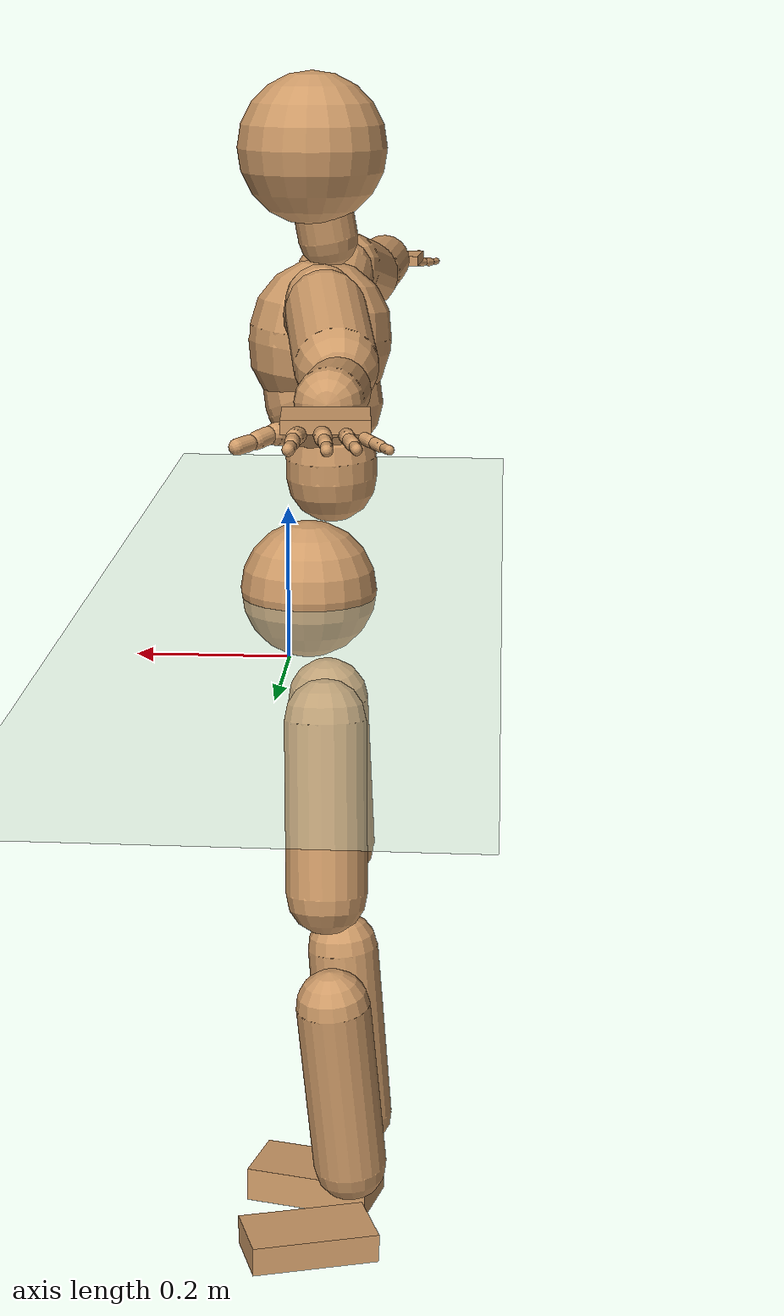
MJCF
<mujoco model="humanoid">
  <compiler coordinate="local" angle="radian"/>
  <default>
    <joint damping="0.0" armature="0.01" stiffness="0.0" limited="true"/>
    <geom conaffinity="1" condim="3" contype="7" margin="0.001" rgba="0.8 0.6 .4 1"/>
  </default>
  <asset>
    <texture type="skybox" builtin="gradient" rgb1=".4 .5 .6" rgb2="0 0 0" width="100" height="100"/>
    <texture builtin="flat" height="1278" mark="cross" markrgb="1 1 1" name="texgeom" random="0.01" rgb1="0.8 0.6 0.4" rgb2="0.8 0.6 0.4" type="cube" width="127"/>
    <texture builtin="checker" height="100" name="texplane" rgb1="0 0 0" rgb2="0.8 0.8 0.8" type="2d" width="100"/>
    <material name="MatPlane" reflectance="0.5" shininess="1" specular="1" texrepeat="60 60" texture="texplane"/>
    <material name="geom" texture="texgeom" texuniform="true"/>
  </asset>
  <worldbody>
    <light cutoff="100" diffuse="1 1 1" dir="-0 0 -1.3" directional="true" exponent="1" pos="0 0 1.3" specular=".1 .1 .1"/>
    <geom conaffinity="1" condim="3" name="floor" pos="0 0 0" rgba="0.8 0.9 0.8 1" size="100 100 .2" type="plane" material="MatPlane"/>
    <body name="Pelvis" pos="0.001 -0.3471 0.0077">
      <freejoint name="Pelvis"/>
      <geom type="sphere" contype="1" conaffinity="1" density="500" size="0.0987" pos="0.0000 0.0000 0.0000" name="Pelvis"/>
      <body name="L_Hip" pos="-0.0273 0.0548 -0.0931">
        <joint name="L_Hip_x" type="hinge" pos="0 0 0" axis="1 0 0" stiffness="800" damping="80" armature="0.02" range="-180.0000 180.0000"/>
        <joint name="L_Hip_y" type="hinge" pos="0 0 0" axis="0 1 0" stiffness="800" damping="80" armature="0.02" range="-180.0000 180.0000"/>
        <joint name="L_Hip_z" type="hinge" pos="0 0 0" axis="0 0 1" stiffness="800" damping="80" armature="0.02" range="-180.0000 180.0000"/>
        <geom type="capsule" contype="1" conaffinity="1" density="500" fromto="-0.0019 0.0137 -0.0839 -0.0078 0.0546 -0.3356" size="0.0597" name="L_Hip"/>
        <body name="L_Knee" pos="-0.0097 0.0683 -0.4195">
          <joint name="L_Knee_x" type="hinge" pos="0 0 0" axis="1 0 0" stiffness="800" damping="80" armature="0.02" range="-180.0000 180.0000"/>
          <joint name="L_Knee_y" type="hinge" pos="0 0 0" axis="0 1 0" stiffness="800" damping="80" armature="0.02" range="-180.0000 180.0000"/>
          <joint name="L_Knee_z" type="hinge" pos="0 0 0" axis="0 0 1" stiffness="800" damping="80" armature="0.02" range="-180.0000 180.0000"/>
          <geom type="capsule" contype="1" conaffinity="1" density="500" fromto="-0.0084 -0.0091 -0.0897 -0.0334 -0.0365 -0.3587" size="0.0548" name="L_Knee"/>
          <body name="L_Ankle" pos="-0.0418 -0.0456 -0.4484">
            <joint name="L_Ankle_x" type="hinge" pos="0 0 0" axis="1 0 0" stiffness="800" damping="80" armature="0.02" range="-180.0000 180.0000"/>
            <joint name="L_Ankle_y" type="hinge" pos="0 0 0" axis="0 1 0" stiffness="800" damping="80" armature="0.02" range="-180.0000 180.0000"/>
            <joint name="L_Ankle_z" type="hinge" pos="0 0 0" axis="0 0 1" stiffness="800" damping="80" armature="0.02" range="-180.0000 180.0000"/>
            <geom type="box" contype="1" conaffinity="1" density="500" pos="0.0704 0.0223 -0.0325" size="0.0974 0.0532 0.0222" quat="0.9883 0.0000 0.0000 0.1527" name="L_Ankle"/>
            <body name="L_Toe" pos="0.1407 0.0446 -0.0651">
              <joint name="L_Toe_x" type="hinge" pos="0 0 0" axis="1 0 0" stiffness="500" damping="50" armature="0.02" range="-180.0000 180.0000"/>
              <joint name="L_Toe_y" type="hinge" pos="0 0 0" axis="0 1 0" stiffness="500" damping="50" armature="0.02" range="-180.0000 180.0000"/>
              <joint name="L_Toe_z" type="hinge" pos="0 0 0" axis="0 0 1" stiffness="500" damping="50" armature="0.02" range="-180.0000 180.0000"/>
              <geom type="box" contype="1" conaffinity="1" density="500" pos="0.0000 0.0000 0.0320" size="0.0011 0.0025 0.0011" quat="0.9876 0.0000 0.0000 0.1570" name="L_Toe"/>
            </body>
          </body>
        </body>
      </body>
      <body name="R_Hip" pos="-0.0205 -0.0565 -0.1031">
        <joint name="R_Hip_x" type="hinge" pos="0 0 0" axis="1 0 0" stiffness="800" damping="80" armature="0.02" range="-180.0000 180.0000"/>
        <joint name="R_Hip_y" type="hinge" pos="0 0 0" axis="0 1 0" stiffness="800" damping="80" armature="0.02" range="-180.0000 180.0000"/>
        <joint name="R_Hip_z" type="hinge" pos="0 0 0" axis="0 0 1" stiffness="800" damping="80" armature="0.02" range="-180.0000 180.0000"/>
        <geom type="capsule" contype="1" conaffinity="1" density="500" fromto="-0.0035 -0.0103 -0.0804 -0.0139 -0.0412 -0.3218" size="0.0594" name="R_Hip"/>
        <body name="R_Knee" pos="-0.0174 -0.0515 -0.4022">
          <joint name="R_Knee_x" type="hinge" pos="0 0 0" axis="1 0 0" stiffness="800" damping="80" armature="0.02" range="-180.0000 180.0000"/>
          <joint name="R_Knee_y" type="hinge" pos="0 0 0" axis="0 1 0" stiffness="800" damping="80" armature="0.02" range="-180.0000 180.0000"/>
          <joint name="R_Knee_z" type="hinge" pos="0 0 0" axis="0 0 1" stiffness="800" damping="80" armature="0.02" range="-180.0000 180.0000"/>
          <geom type="capsule" contype="1" conaffinity="1" density="500" fromto="-0.0081 0.0035 -0.0926 -0.0324 0.0141 -0.3705" size="0.0544" name="R_Knee"/>
          <body name="R_Ankle" pos="-0.0405 0.0176 -0.4631">
            <joint name="R_Ankle_x" type="hinge" pos="0 0 0" axis="1 0 0" stiffness="800" damping="80" armature="0.02" range="-180.0000 180.0000"/>
            <joint name="R_Ankle_y" type="hinge" pos="0 0 0" axis="0 1 0" stiffness="800" damping="80" armature="0.02" range="-180.0000 180.0000"/>
            <joint name="R_Ankle_z" type="hinge" pos="0 0 0" axis="0 0 1" stiffness="800" damping="80" armature="0.02" range="-180.0000 180.0000"/>
            <geom type="box" contype="1" conaffinity="1" density="500" pos="0.0737 -0.0180 -0.0319" size="0.0974 0.0532 0.0268" quat="0.9929 0.0000 0.0000 -0.1191" name="R_Ankle"/>
            <body name="R_Toe" pos="0.1475 -0.0359 -0.0639">
              <joint name="R_Toe_x" type="hinge" pos="0 0 0" axis="1 0 0" stiffness="500" damping="50" armature="0.02" range="-180.0000 180.0000"/>
              <joint name="R_Toe_y" type="hinge" pos="0 0 0" axis="0 1 0" stiffness="500" damping="50" armature="0.02" range="-180.0000 180.0000"/>
              <joint name="R_Toe_z" type="hinge" pos="0 0 0" axis="0 0 1" stiffness="500" damping="50" armature="0.02" range="-180.0000 180.0000"/>
              <geom type="box" contype="1" conaffinity="1" density="500" pos="0.0000 0.0000 0.0268" size="0.001 0.0025 0.0011" quat="0.9938 0.0000 0.0000 -0.1113" name="R_Toe"/>
            </body>
          </body>
        </body>
      </body>
      <body name="Torso" pos="-0.035 -0.0014 0.1083">
        <joint name="Torso_x" type="hinge" pos="0 0 0" axis="1 0 0" stiffness="1000" damping="100" armature="0.02" range="-180.0000 180.0000"/>
        <joint name="Torso_y" type="hinge" pos="0 0 0" axis="0 1 0" stiffness="1000" damping="100" armature="0.02" range="-180.0000 180.0000"/>
        <joint name="Torso_z" type="hinge" pos="0 0 0" axis="0 0 1" stiffness="1000" damping="100" armature="0.02" range="-180.0000 180.0000"/>
        <geom type="capsule" contype="1" conaffinity="1" density="500" fromto="0.0029 0.0047 0.0871 0.0020 0.0031 0.0580" size="0.065" name="Torso"/>
        <body name="Spine" pos="0.0049 0.0078 0.1451">
          <joint name="Spine_x" type="hinge" pos="0 0 0" axis="1 0 0" stiffness="1000" damping="100" armature="0.02" range="-180.0000 180.0000"/>
          <joint name="Spine_y" type="hinge" pos="0 0 0" axis="0 1 0" stiffness="1000" damping="100" armature="0.02" range="-180.0000 180.0000"/>
          <joint name="Spine_z" type="hinge" pos="0 0 0" axis="0 0 1" stiffness="1000" damping="100" armature="0.02" range="-180.0000 180.0000"/>
          <geom type="capsule" contype="1" conaffinity="1" density="500" fromto="0.0121 -0.0046 0.0339 0.0080 -0.0031 0.0226" size="0.0831" name="Spine"/>
          <body name="Chest" pos="0.0201 -0.0076 0.0565">
            <joint name="Chest_x" type="hinge" pos="0 0 0" axis="1 0 0" stiffness="1000" damping="100" armature="0.02" range="-180.0000 180.0000"/>
            <joint name="Chest_y" type="hinge" pos="0 0 0" axis="0 1 0" stiffness="1000" damping="100" armature="0.02" range="-180.0000 180.0000"/>
            <joint name="Chest_z" type="hinge" pos="0 0 0" axis="0 0 1" stiffness="1000" damping="100" armature="0.02" range="-180.0000 180.0000"/>
            <geom type="capsule" contype="1" conaffinity="1" density="500" fromto="-0.0064 -0.0017 0.0621 -0.0043 -0.0011 0.0414" size="0.1004" name="Chest"/>
            <body name="Neck" pos="-0.0212 -0.0077 0.1604">
              <joint name="Neck_x" type="hinge" pos="0 0 0" axis="1 0 0" stiffness="500" damping="50" armature="0.02" range="-180.0000 180.0000"/>
              <joint name="Neck_y" type="hinge" pos="0 0 0" axis="0 1 0" stiffness="500" damping="50" armature="0.02" range="-180.0000 180.0000"/>
              <joint name="Neck_z" type="hinge" pos="0 0 0" axis="0 0 1" stiffness="500" damping="50" armature="0.02" range="-180.0000 180.0000"/>
              <geom type="capsule" contype="1" conaffinity="1" density="500" fromto="0.0053 0.0044 0.0309 0.0213 0.0175 0.1234" size="0.0418" name="Neck"/>
              <body name="Head" pos="0.0266 0.0218 0.1543">
                <joint name="Head_x" type="hinge" pos="0 0 0" axis="1 0 0" stiffness="500" damping="50" armature="0.02" range="-180.0000 180.0000"/>
                <joint name="Head_y" type="hinge" pos="0 0 0" axis="0 1 0" stiffness="500" damping="50" armature="0.02" range="-180.0000 180.0000"/>
                <joint name="Head_z" type="hinge" pos="0 0 0" axis="0 0 1" stiffness="500" damping="50" armature="0.02" range="-180.0000 180.0000"/>
                <geom type="sphere" contype="1" conaffinity="1" density="500" size="0.1038" pos="0.0000 0.0000 0.0000" name="Head"/>
              </body>
            </body>
            <body name="L_Thorax" pos="-0.0034 0.0409 0.0748">
              <joint name="L_Thorax_x" type="hinge" pos="0 0 0" axis="1 0 0" stiffness="500" damping="50" armature="0.02" range="-180.0000 180.0000"/>
              <joint name="L_Thorax_y" type="hinge" pos="0 0 0" axis="0 1 0" stiffness="500" damping="50" armature="0.02" range="-180.0000 180.0000"/>
              <joint name="L_Thorax_z" type="hinge" pos="0 0 0" axis="0 0 1" stiffness="500" damping="50" armature="0.02" range="-180.0000 180.0000"/>
              <geom type="capsule" contype="1" conaffinity="1" density="500" fromto="-0.0035 0.0270 0.0125 -0.0141 0.1080 0.0498" size="0.0478" name="L_Thorax"/>
              <body name="L_Shoulder" pos="-0.0176 0.1349 0.0623">
                <joint name="L_Shoulder_x" type="hinge" pos="0 0 0" axis="1 0 0" stiffness="500" damping="50" armature="0.02" range="-180.0000 180.0000"/>
                <joint name="L_Shoulder_y" type="hinge" pos="0 0 0" axis="0 1 0" stiffness="500" damping="50" armature="0.02" range="-180.0000 180.0000"/>
                <joint name="L_Shoulder_z" type="hinge" pos="0 0 0" axis="0 0 1" stiffness="500" damping="50" armature="0.02" range="-180.0000 180.0000"/>
                <geom type="capsule" contype="1" conaffinity="1" density="500" fromto="-0.0084 0.0542 -0.0161 -0.0335 0.2170 -0.0646" size="0.0536" name="L_Shoulder"/>
                <body name="L_Elbow" pos="-0.0419 0.2712 -0.0807">
                  <joint name="L_Elbow_x" type="hinge" pos="0 0 0" axis="1 0 0" stiffness="500" damping="50" armature="0.02" range="-720.0000 720.0000"/>
                  <joint name="L_Elbow_y" type="hinge" pos="0 0 0" axis="0 1 0" stiffness="500" damping="50" armature="0.02" range="-720.0000 720.0000"/>
                  <joint name="L_Elbow_z" type="hinge" pos="0 0 0" axis="0 0 1" stiffness="500" damping="50" armature="0.02" range="-720.0000 720.0000"/>
                  <geom type="capsule" contype="1" conaffinity="1" density="500" fromto="-0.0007 0.0593 0.0051 -0.0027 0.2371 0.0204" size="0.0405" name="L_Elbow"/>
                  <body name="L_Wrist" pos="-0.0033 0.2964 0.0256">
                    <joint name="L_Wrist_x" type="hinge" pos="0 0 0" axis="1 0 0" stiffness="300" damping="30" armature="0.02" range="-180.0000 180.0000"/>
                    <joint name="L_Wrist_y" type="hinge" pos="0 0 0" axis="0 1 0" stiffness="300" damping="30" armature="0.02" range="-180.0000 180.0000"/>
                    <joint name="L_Wrist_z" type="hinge" pos="0 0 0" axis="0 0 1" stiffness="300" damping="30" armature="0.02" range="-180.0000 180.0000"/>
                    <geom type="box" contype="1" conaffinity="1" density="500" pos="-0.0032 0.0495 -0.0066" size="0.0426 0.049 0.0079" quat="0.7294 0.0000 0.0000 -0.6841" name="L_Wrist"/>
                    <body name="L_Index1" pos="0.0206 0.1152 -0.0103">
                      <joint name="L_Index1_x" type="hinge" pos="0 0 0" axis="1 0 0" stiffness="100" damping="10" armature="0.02" range="-180.0000 180.0000"/>
                      <joint name="L_Index1_y" type="hinge" pos="0 0 0" axis="0 1 0" stiffness="100" damping="10" armature="0.02" range="-180.0000 180.0000"/>
                      <joint name="L_Index1_z" type="hinge" pos="0 0 0" axis="0 0 1" stiffness="100" damping="10" armature="0.02" range="-180.0000 180.0000"/>
                      <geom type="capsule" contype="1" conaffinity="1" density="500" fromto="0.0007 0.0069 0.0003 0.0028 0.0278 0.0012" size="0.0095" name="L_Index1"/>
                      <body name="L_Index2" pos="0.0036 0.0347 0.0015">
                        <joint name="L_Index2_x" type="hinge" pos="0 0 0" axis="1 0 0" stiffness="100" damping="10" armature="0.02" range="-180.0000 180.0000"/>
                        <joint name="L_Index2_y" type="hinge" pos="0 0 0" axis="0 1 0" stiffness="100" damping="10" armature="0.02" range="-180.0000 180.0000"/>
                        <joint name="L_Index2_z" type="hinge" pos="0 0 0" axis="0 0 1" stiffness="100" damping="10" armature="0.02" range="-180.0000 180.0000"/>
                        <geom type="capsule" contype="1" conaffinity="1" density="500" fromto="-0.0000 0.0049 -0.0006 -0.0002 0.0196 -0.0022" size="0.0079" name="L_Index2"/>
                        <body name="L_Index3" pos="-0.0002 0.0245 -0.0028">
                          <joint name="L_Index3_x" type="hinge" pos="0 0 0" axis="1 0 0" stiffness="100" damping="10" armature="0.02" range="-180.0000 180.0000"/>
                          <joint name="L_Index3_y" type="hinge" pos="0 0 0" axis="0 1 0" stiffness="100" damping="10" armature="0.02" range="-180.0000 180.0000"/>
                          <joint name="L_Index3_z" type="hinge" pos="0 0 0" axis="0 0 1" stiffness="100" damping="10" armature="0.02" range="-180.0000 180.0000"/>
                          <geom type="capsule" contype="1" conaffinity="1" density="500" fromto="0.0004 0.0053 -0.0002 0.0014 0.0212 -0.0006" size="0.0068" name="L_Index3"/>
                        </body>
                      </body>
                    </body>
                    <body name="L_Middle1" pos="-0.0043 0.124 -0.0077">
                      <joint name="L_Middle1_x" type="hinge" pos="0 0 0" axis="1 0 0" stiffness="100" damping="10" armature="0.02" range="-180.0000 180.0000"/>
                      <joint name="L_Middle1_y" type="hinge" pos="0 0 0" axis="0 1 0" stiffness="100" damping="10" armature="0.02" range="-180.0000 180.0000"/>
                      <joint name="L_Middle1_z" type="hinge" pos="0 0 0" axis="0 0 1" stiffness="100" damping="10" armature="0.02" range="-180.0000 180.0000"/>
                      <geom type="capsule" contype="1" conaffinity="1" density="500" fromto="-0.0009 0.0066 0.0000 -0.0036 0.0266 0.0002" size="0.0097" name="L_Middle1"/>
                      <body name="L_Middle2" pos="-0.0046 0.0332 0.0002">
                        <joint name="L_Middle2_x" type="hinge" pos="0 0 0" axis="1 0 0" stiffness="100" damping="10" armature="0.02" range="-180.0000 180.0000"/>
                        <joint name="L_Middle2_y" type="hinge" pos="0 0 0" axis="0 1 0" stiffness="100" damping="10" armature="0.02" range="-180.0000 180.0000"/>
                        <joint name="L_Middle2_z" type="hinge" pos="0 0 0" axis="0 0 1" stiffness="100" damping="10" armature="0.02" range="-180.0000 180.0000"/>
                        <geom type="capsule" contype="1" conaffinity="1" density="500" fromto="-0.0009 0.0051 -0.0005 -0.0036 0.0204 -0.0021" size="0.0073" name="L_Middle2"/>
                        <body name="L_Middle3" pos="-0.0045 0.0255 -0.0026">
                          <joint name="L_Middle3_x" type="hinge" pos="0 0 0" axis="1 0 0" stiffness="100" damping="10" armature="0.02" range="-180.0000 180.0000"/>
                          <joint name="L_Middle3_y" type="hinge" pos="0 0 0" axis="0 1 0" stiffness="100" damping="10" armature="0.02" range="-180.0000 180.0000"/>
                          <joint name="L_Middle3_z" type="hinge" pos="0 0 0" axis="0 0 1" stiffness="100" damping="10" armature="0.02" range="-180.0000 180.0000"/>
                          <geom type="capsule" contype="1" conaffinity="1" density="500" fromto="-0.0005 0.0055 -0.0001 -0.0020 0.0220 -0.0005" size="0.0066" name="L_Middle3"/>
                        </body>
                      </body>
                    </body>
                    <body name="L_Pinky1" pos="-0.0465 0.0969 -0.0162">
                      <joint name="L_Pinky1_x" type="hinge" pos="0 0 0" axis="1 0 0" stiffness="100" damping="10" armature="0.02" range="-180.0000 180.0000"/>
                      <joint name="L_Pinky1_y" type="hinge" pos="0 0 0" axis="0 1 0" stiffness="100" damping="10" armature="0.02" range="-180.0000 180.0000"/>
                      <joint name="L_Pinky1_z" type="hinge" pos="0 0 0" axis="0 0 1" stiffness="100" damping="10" armature="0.02" range="-180.0000 180.0000"/>
                      <geom type="capsule" contype="1" conaffinity="1" density="500" fromto="-0.0024 0.0035 -0.0004 -0.0097 0.0141 -0.0015" size="0.0069" name="L_Pinky1"/>
                      <body name="L_Pinky2" pos="-0.0121 0.0177 -0.0018">
                        <joint name="L_Pinky2_x" type="hinge" pos="0 0 0" axis="1 0 0" stiffness="100" damping="10" armature="0.02" range="-180.0000 180.0000"/>
                        <joint name="L_Pinky2_y" type="hinge" pos="0 0 0" axis="0 1 0" stiffness="100" damping="10" armature="0.02" range="-180.0000 180.0000"/>
                        <joint name="L_Pinky2_z" type="hinge" pos="0 0 0" axis="0 0 1" stiffness="100" damping="10" armature="0.02" range="-180.0000 180.0000"/>
                        <geom type="capsule" contype="1" conaffinity="1" density="500" fromto="-0.0023 0.0034 -0.0004 -0.0092 0.0138 -0.0016" size="0.0067" name="L_Pinky2"/>
                        <body name="L_Pinky3" pos="-0.0115 0.0172 -0.002">
                          <joint name="L_Pinky3_x" type="hinge" pos="0 0 0" axis="1 0 0" stiffness="100" damping="10" armature="0.02" range="-180.0000 180.0000"/>
                          <joint name="L_Pinky3_y" type="hinge" pos="0 0 0" axis="0 1 0" stiffness="100" damping="10" armature="0.02" range="-180.0000 180.0000"/>
                          <joint name="L_Pinky3_z" type="hinge" pos="0 0 0" axis="0 0 1" stiffness="100" damping="10" armature="0.02" range="-180.0000 180.0000"/>
                          <geom type="capsule" contype="1" conaffinity="1" density="500" fromto="-0.0019 0.0038 -0.0000 -0.0076 0.0154 -0.0000" size="0.0052" name="L_Pinky3"/>
                        </body>
                      </body>
                    </body>
                    <body name="L_Ring1" pos="-0.029 0.1113 -0.0106">
                      <joint name="L_Ring1_x" type="hinge" pos="0 0 0" axis="1 0 0" stiffness="100" damping="10" armature="0.02" range="-180.0000 180.0000"/>
                      <joint name="L_Ring1_y" type="hinge" pos="0 0 0" axis="0 1 0" stiffness="100" damping="10" armature="0.02" range="-180.0000 180.0000"/>
                      <joint name="L_Ring1_z" type="hinge" pos="0 0 0" axis="0 0 1" stiffness="100" damping="10" armature="0.02" range="-180.0000 180.0000"/>
                      <geom type="capsule" contype="1" conaffinity="1" density="500" fromto="-0.0010 0.0062 0.0001 -0.0042 0.0247 0.0006" size="0.0083" name="L_Ring1"/>
                      <body name="L_Ring2" pos="-0.0052 0.0308 0.0007">
                        <joint name="L_Ring2_x" type="hinge" pos="0 0 0" axis="1 0 0" stiffness="100" damping="10" armature="0.02" range="-180.0000 180.0000"/>
                        <joint name="L_Ring2_y" type="hinge" pos="0 0 0" axis="0 1 0" stiffness="100" damping="10" armature="0.02" range="-180.0000 180.0000"/>
                        <joint name="L_Ring2_z" type="hinge" pos="0 0 0" axis="0 0 1" stiffness="100" damping="10" armature="0.02" range="-180.0000 180.0000"/>
                        <geom type="capsule" contype="1" conaffinity="1" density="500" fromto="-0.0014 0.0050 -0.0004 -0.0057 0.0199 -0.0018" size="0.0078" name="L_Ring2"/>
                        <body name="L_Ring3" pos="-0.0071 0.0248 -0.0022">
                          <joint name="L_Ring3_x" type="hinge" pos="0 0 0" axis="1 0 0" stiffness="100" damping="10" armature="0.02" range="-180.0000 180.0000"/>
                          <joint name="L_Ring3_y" type="hinge" pos="0 0 0" axis="0 1 0" stiffness="100" damping="10" armature="0.02" range="-180.0000 180.0000"/>
                          <joint name="L_Ring3_z" type="hinge" pos="0 0 0" axis="0 0 1" stiffness="100" damping="10" armature="0.02" range="-180.0000 180.0000"/>
                          <geom type="capsule" contype="1" conaffinity="1" density="500" fromto="-0.0010 0.0054 -0.0000 -0.0041 0.0215 -0.0002" size="0.0061" name="L_Ring3"/>
                        </body>
                      </body>
                    </body>
                    <body name="L_Thumb1" pos="0.0274 0.0473 -0.021">
                      <joint name="L_Thumb1_x" type="hinge" pos="0 0 0" axis="1 0 0" stiffness="100" damping="10" armature="0.02" range="-180.0000 180.0000"/>
                      <joint name="L_Thumb1_y" type="hinge" pos="0 0 0" axis="0 1 0" stiffness="100" damping="10" armature="0.02" range="-180.0000 180.0000"/>
                      <joint name="L_Thumb1_z" type="hinge" pos="0 0 0" axis="0 0 1" stiffness="100" damping="10" armature="0.02" range="-180.0000 180.0000"/>
                      <geom type="capsule" contype="1" conaffinity="1" density="500" fromto="0.0055 0.0037 0.0003 0.0221 0.0149 0.0012" size="0.0129" name="L_Thumb1"/>
                      <body name="L_Thumb2" pos="0.0276 0.0187 0.0015">
                        <joint name="L_Thumb2_x" type="hinge" pos="0 0 0" axis="1 0 0" stiffness="100" damping="10" armature="0.02" range="-180.0000 180.0000"/>
                        <joint name="L_Thumb2_y" type="hinge" pos="0 0 0" axis="0 1 0" stiffness="100" damping="10" armature="0.02" range="-180.0000 180.0000"/>
                        <joint name="L_Thumb2_z" type="hinge" pos="0 0 0" axis="0 0 1" stiffness="100" damping="10" armature="0.02" range="-180.0000 180.0000"/>
                        <geom type="capsule" contype="1" conaffinity="1" density="500" fromto="0.0035 0.0045 -0.0009 0.0140 0.0179 -0.0037" size="0.0102" name="L_Thumb2"/>
                        <body name="L_Thumb3" pos="0.0175 0.0224 -0.0047">
                          <joint name="L_Thumb3_x" type="hinge" pos="0 0 0" axis="1 0 0" stiffness="100" damping="10" armature="0.02" range="-180.0000 180.0000"/>
                          <joint name="L_Thumb3_y" type="hinge" pos="0 0 0" axis="0 1 0" stiffness="100" damping="10" armature="0.02" range="-180.0000 180.0000"/>
                          <joint name="L_Thumb3_z" type="hinge" pos="0 0 0" axis="0 0 1" stiffness="100" damping="10" armature="0.02" range="-180.0000 180.0000"/>
                          <geom type="capsule" contype="1" conaffinity="1" density="500" fromto="0.0039 0.0049 -0.0005 0.0156 0.0195 -0.0021" size="0.0092" name="L_Thumb3"/>
                        </body>
                      </body>
                    </body>
                  </body>
                </body>
              </body>
            </body>
            <body name="R_Thorax" pos="-0.0073 -0.0418 0.0752">
              <joint name="R_Thorax_x" type="hinge" pos="0 0 0" axis="1 0 0" stiffness="500" damping="50" armature="0.02" range="-180.0000 180.0000"/>
              <joint name="R_Thorax_y" type="hinge" pos="0 0 0" axis="0 1 0" stiffness="500" damping="50" armature="0.02" range="-180.0000 180.0000"/>
              <joint name="R_Thorax_z" type="hinge" pos="0 0 0" axis="0 0 1" stiffness="500" damping="50" armature="0.02" range="-180.0000 180.0000"/>
              <geom type="capsule" contype="1" conaffinity="1" density="500" fromto="-0.0024 -0.0251 0.0122 -0.0095 -0.1006 0.0487" size="0.056" name="R_Thorax"/>
              <body name="R_Shoulder" pos="-0.0119 -0.1257 0.0609">
                <joint name="R_Shoulder_x" type="hinge" pos="0 0 0" axis="1 0 0" stiffness="500" damping="50" armature="0.02" range="-180.0000 180.0000"/>
                <joint name="R_Shoulder_y" type="hinge" pos="0 0 0" axis="0 1 0" stiffness="500" damping="50" armature="0.02" range="-180.0000 180.0000"/>
                <joint name="R_Shoulder_z" type="hinge" pos="0 0 0" axis="0 0 1" stiffness="500" damping="50" armature="0.02" range="-180.0000 180.0000"/>
                <geom type="capsule" contype="1" conaffinity="1" density="500" fromto="-0.0065 -0.0578 -0.0104 -0.0261 -0.2314 -0.0416" size="0.0527" name="R_Shoulder"/>
                <body name="R_Elbow" pos="-0.0326 -0.2892 -0.052">
                  <joint name="R_Elbow_x" type="hinge" pos="0 0 0" axis="1 0 0" stiffness="500" damping="50" armature="0.02" range="-720.0000 720.0000"/>
                  <joint name="R_Elbow_y" type="hinge" pos="0 0 0" axis="0 1 0" stiffness="500" damping="50" armature="0.02" range="-720.0000 720.0000"/>
                  <joint name="R_Elbow_z" type="hinge" pos="0 0 0" axis="0 0 1" stiffness="500" damping="50" armature="0.02" range="-720.0000 720.0000"/>
                  <geom type="capsule" contype="1" conaffinity="1" density="500" fromto="-0.0027 -0.0573 0.0003 -0.0109 -0.2293 0.0011" size="0.0415" name="R_Elbow"/>
                  <body name="R_Wrist" pos="-0.0136 -0.2866 0.0014">
                    <joint name="R_Wrist_x" type="hinge" pos="0 0 0" axis="1 0 0" stiffness="300" damping="30" armature="0.02" range="-180.0000 180.0000"/>
                    <joint name="R_Wrist_y" type="hinge" pos="0 0 0" axis="0 1 0" stiffness="300" damping="30" armature="0.02" range="-180.0000 180.0000"/>
                    <joint name="R_Wrist_z" type="hinge" pos="0 0 0" axis="0 0 1" stiffness="300" damping="30" armature="0.02" range="-180.0000 180.0000"/>
                    <geom type="box" contype="1" conaffinity="1" density="500" pos="-0.0036 -0.0492 -0.0083" size="0.0426 0.0506 0.008" quat="0.7328 0.0000 0.0000 0.6805" name="R_Wrist"/>
                    <body name="R_Index1" pos="0.0196 -0.1148 -0.0138">
                      <joint name="R_Index1_x" type="hinge" pos="0 0 0" axis="1 0 0" stiffness="100" damping="10" armature="0.02" range="-180.0000 180.0000"/>
                      <joint name="R_Index1_y" type="hinge" pos="0 0 0" axis="0 1 0" stiffness="100" damping="10" armature="0.02" range="-180.0000 180.0000"/>
                      <joint name="R_Index1_z" type="hinge" pos="0 0 0" axis="0 0 1" stiffness="100" damping="10" armature="0.02" range="-180.0000 180.0000"/>
                      <geom type="capsule" contype="1" conaffinity="1" density="500" fromto="0.0007 -0.0069 0.0003 0.0028 -0.0278 0.0012" size="0.0095" name="R_Index1"/>
                      <body name="R_Index2" pos="0.0036 -0.0347 0.0015">
                        <joint name="R_Index2_x" type="hinge" pos="0 0 0" axis="1 0 0" stiffness="100" damping="10" armature="0.02" range="-180.0000 180.0000"/>
                        <joint name="R_Index2_y" type="hinge" pos="0 0 0" axis="0 1 0" stiffness="100" damping="10" armature="0.02" range="-180.0000 180.0000"/>
                        <joint name="R_Index2_z" type="hinge" pos="0 0 0" axis="0 0 1" stiffness="100" damping="10" armature="0.02" range="-180.0000 180.0000"/>
                        <geom type="capsule" contype="1" conaffinity="1" density="500" fromto="-0.0000 -0.0049 -0.0006 -0.0002 -0.0196 -0.0022" size="0.0079" name="R_Index2"/>
                        <body name="R_Index3" pos="-0.0002 -0.0245 -0.0028">
                          <joint name="R_Index3_x" type="hinge" pos="0 0 0" axis="1 0 0" stiffness="100" damping="10" armature="0.02" range="-180.0000 180.0000"/>
                          <joint name="R_Index3_y" type="hinge" pos="0 0 0" axis="0 1 0" stiffness="100" damping="10" armature="0.02" range="-180.0000 180.0000"/>
                          <joint name="R_Index3_z" type="hinge" pos="0 0 0" axis="0 0 1" stiffness="100" damping="10" armature="0.02" range="-180.0000 180.0000"/>
                          <geom type="capsule" contype="1" conaffinity="1" density="500" fromto="0.0004 -0.0045 -0.0002 0.0014 -0.0180 -0.0006" size="0.0071" name="R_Index3"/>
                        </body>
                      </body>
                    </body>
                    <body name="R_Middle1" pos="-0.0052 -0.1235 -0.0111">
                      <joint name="R_Middle1_x" type="hinge" pos="0 0 0" axis="1 0 0" stiffness="100" damping="10" armature="0.02" range="-180.0000 180.0000"/>
                      <joint name="R_Middle1_y" type="hinge" pos="0 0 0" axis="0 1 0" stiffness="100" damping="10" armature="0.02" range="-180.0000 180.0000"/>
                      <joint name="R_Middle1_z" type="hinge" pos="0 0 0" axis="0 0 1" stiffness="100" damping="10" armature="0.02" range="-180.0000 180.0000"/>
                      <geom type="capsule" contype="1" conaffinity="1" density="500" fromto="-0.0009 -0.0066 0.0000 -0.0036 -0.0266 0.0002" size="0.0097" name="R_Middle1"/>
                      <body name="R_Middle2" pos="-0.0046 -0.0332 0.0002">
                        <joint name="R_Middle2_x" type="hinge" pos="0 0 0" axis="1 0 0" stiffness="100" damping="10" armature="0.02" range="-180.0000 180.0000"/>
                        <joint name="R_Middle2_y" type="hinge" pos="0 0 0" axis="0 1 0" stiffness="100" damping="10" armature="0.02" range="-180.0000 180.0000"/>
                        <joint name="R_Middle2_z" type="hinge" pos="0 0 0" axis="0 0 1" stiffness="100" damping="10" armature="0.02" range="-180.0000 180.0000"/>
                        <geom type="capsule" contype="1" conaffinity="1" density="500" fromto="-0.0009 -0.0051 -0.0005 -0.0036 -0.0204 -0.0021" size="0.0073" name="R_Middle2"/>
                        <body name="R_Middle3" pos="-0.0045 -0.0255 -0.0026">
                          <joint name="R_Middle3_x" type="hinge" pos="0 0 0" axis="1 0 0" stiffness="100" damping="10" armature="0.02" range="-180.0000 180.0000"/>
                          <joint name="R_Middle3_y" type="hinge" pos="0 0 0" axis="0 1 0" stiffness="100" damping="10" armature="0.02" range="-180.0000 180.0000"/>
                          <joint name="R_Middle3_z" type="hinge" pos="0 0 0" axis="0 0 1" stiffness="100" damping="10" armature="0.02" range="-180.0000 180.0000"/>
                          <geom type="capsule" contype="1" conaffinity="1" density="500" fromto="-0.0005 -0.0047 -0.0001 -0.0020 -0.0188 -0.0005" size="0.0069" name="R_Middle3"/>
                        </body>
                      </body>
                    </body>
                    <body name="R_Pinky1" pos="-0.0474 -0.0964 -0.0196">
                      <joint name="R_Pinky1_x" type="hinge" pos="0 0 0" axis="1 0 0" stiffness="100" damping="10" armature="0.02" range="-180.0000 180.0000"/>
                      <joint name="R_Pinky1_y" type="hinge" pos="0 0 0" axis="0 1 0" stiffness="100" damping="10" armature="0.02" range="-180.0000 180.0000"/>
                      <joint name="R_Pinky1_z" type="hinge" pos="0 0 0" axis="0 0 1" stiffness="100" damping="10" armature="0.02" range="-180.0000 180.0000"/>
                      <geom type="capsule" contype="1" conaffinity="1" density="500" fromto="-0.0024 -0.0035 -0.0004 -0.0097 -0.0141 -0.0015" size="0.0069" name="R_Pinky1"/>
                      <body name="R_Pinky2" pos="-0.0121 -0.0177 -0.0018">
                        <joint name="R_Pinky2_x" type="hinge" pos="0 0 0" axis="1 0 0" stiffness="100" damping="10" armature="0.02" range="-180.0000 180.0000"/>
                        <joint name="R_Pinky2_y" type="hinge" pos="0 0 0" axis="0 1 0" stiffness="100" damping="10" armature="0.02" range="-180.0000 180.0000"/>
                        <joint name="R_Pinky2_z" type="hinge" pos="0 0 0" axis="0 0 1" stiffness="100" damping="10" armature="0.02" range="-180.0000 180.0000"/>
                        <geom type="capsule" contype="1" conaffinity="1" density="500" fromto="-0.0023 -0.0034 -0.0004 -0.0092 -0.0138 -0.0016" size="0.0067" name="R_Pinky2"/>
                        <body name="R_Pinky3" pos="-0.0115 -0.0172 -0.002">
                          <joint name="R_Pinky3_x" type="hinge" pos="0 0 0" axis="1 0 0" stiffness="100" damping="10" armature="0.02" range="-180.0000 180.0000"/>
                          <joint name="R_Pinky3_y" type="hinge" pos="0 0 0" axis="0 1 0" stiffness="100" damping="10" armature="0.02" range="-180.0000 180.0000"/>
                          <joint name="R_Pinky3_z" type="hinge" pos="0 0 0" axis="0 0 1" stiffness="100" damping="10" armature="0.02" range="-180.0000 180.0000"/>
                          <geom type="capsule" contype="1" conaffinity="1" density="500" fromto="-0.0019 -0.0030 -0.0000 -0.0076 -0.0122 -0.0000" size="0.0054" name="R_Pinky3"/>
                        </body>
                      </body>
                    </body>
                    <body name="R_Ring1" pos="-0.03 -0.1108 -0.0141">
                      <joint name="R_Ring1_x" type="hinge" pos="0 0 0" axis="1 0 0" stiffness="100" damping="10" armature="0.02" range="-180.0000 180.0000"/>
                      <joint name="R_Ring1_y" type="hinge" pos="0 0 0" axis="0 1 0" stiffness="100" damping="10" armature="0.02" range="-180.0000 180.0000"/>
                      <joint name="R_Ring1_z" type="hinge" pos="0 0 0" axis="0 0 1" stiffness="100" damping="10" armature="0.02" range="-180.0000 180.0000"/>
                      <geom type="capsule" contype="1" conaffinity="1" density="500" fromto="-0.0010 -0.0062 0.0001 -0.0042 -0.0247 0.0006" size="0.0083" name="R_Ring1"/>
                      <body name="R_Ring2" pos="-0.0052 -0.0308 0.0007">
                        <joint name="R_Ring2_x" type="hinge" pos="0 0 0" axis="1 0 0" stiffness="100" damping="10" armature="0.02" range="-180.0000 180.0000"/>
                        <joint name="R_Ring2_y" type="hinge" pos="0 0 0" axis="0 1 0" stiffness="100" damping="10" armature="0.02" range="-180.0000 180.0000"/>
                        <joint name="R_Ring2_z" type="hinge" pos="0 0 0" axis="0 0 1" stiffness="100" damping="10" armature="0.02" range="-180.0000 180.0000"/>
                        <geom type="capsule" contype="1" conaffinity="1" density="500" fromto="-0.0014 -0.0050 -0.0004 -0.0057 -0.0199 -0.0018" size="0.0078" name="R_Ring2"/>
                        <body name="R_Ring3" pos="-0.0071 -0.0248 -0.0022">
                          <joint name="R_Ring3_x" type="hinge" pos="0 0 0" axis="1 0 0" stiffness="100" damping="10" armature="0.02" range="-180.0000 180.0000"/>
                          <joint name="R_Ring3_y" type="hinge" pos="0 0 0" axis="0 1 0" stiffness="100" damping="10" armature="0.02" range="-180.0000 180.0000"/>
                          <joint name="R_Ring3_z" type="hinge" pos="0 0 0" axis="0 0 1" stiffness="100" damping="10" armature="0.02" range="-180.0000 180.0000"/>
                          <geom type="capsule" contype="1" conaffinity="1" density="500" fromto="-0.0010 -0.0046 -0.0000 -0.0041 -0.0183 -0.0002" size="0.0064" name="R_Ring3"/>
                        </body>
                      </body>
                    </body>
                    <body name="R_Thumb1" pos="0.0265 -0.0468 -0.0245">
                      <joint name="R_Thumb1_x" type="hinge" pos="0 0 0" axis="1 0 0" stiffness="100" damping="10" armature="0.02" range="-180.0000 180.0000"/>
                      <joint name="R_Thumb1_y" type="hinge" pos="0 0 0" axis="0 1 0" stiffness="100" damping="10" armature="0.02" range="-180.0000 180.0000"/>
                      <joint name="R_Thumb1_z" type="hinge" pos="0 0 0" axis="0 0 1" stiffness="100" damping="10" armature="0.02" range="-180.0000 180.0000"/>
                      <geom type="capsule" contype="1" conaffinity="1" density="500" fromto="0.0055 -0.0037 0.0003 0.0221 -0.0149 0.0012" size="0.0129" name="R_Thumb1"/>
                      <body name="R_Thumb2" pos="0.0276 -0.0187 0.0015">
                        <joint name="R_Thumb2_x" type="hinge" pos="0 0 0" axis="1 0 0" stiffness="100" damping="10" armature="0.02" range="-180.0000 180.0000"/>
                        <joint name="R_Thumb2_y" type="hinge" pos="0 0 0" axis="0 1 0" stiffness="100" damping="10" armature="0.02" range="-180.0000 180.0000"/>
                        <joint name="R_Thumb2_z" type="hinge" pos="0 0 0" axis="0 0 1" stiffness="100" damping="10" armature="0.02" range="-180.0000 180.0000"/>
                        <geom type="capsule" contype="1" conaffinity="1" density="500" fromto="0.0035 -0.0045 -0.0009 0.0140 -0.0179 -0.0037" size="0.0102" name="R_Thumb2"/>
                        <body name="R_Thumb3" pos="0.0174 -0.0224 -0.0047">
                          <joint name="R_Thumb3_x" type="hinge" pos="0 0 0" axis="1 0 0" stiffness="100" damping="10" armature="0.02" range="-180.0000 180.0000"/>
                          <joint name="R_Thumb3_y" type="hinge" pos="0 0 0" axis="0 1 0" stiffness="100" damping="10" armature="0.02" range="-180.0000 180.0000"/>
                          <joint name="R_Thumb3_z" type="hinge" pos="0 0 0" axis="0 0 1" stiffness="100" damping="10" armature="0.02" range="-180.0000 180.0000"/>
                          <geom type="capsule" contype="1" conaffinity="1" density="500" fromto="0.0039 -0.0041 -0.0005 0.0156 -0.0163 -0.0021" size="0.0094" name="R_Thumb3"/>
                        </body>
                      </body>
                    </body>
                  </body>
                </body>
              </body>
            </body>
          </body>
        </body>
      </body>
    </body>
  </worldbody>
  <actuator>
    <motor name="L_Hip_x" joint="L_Hip_x" gear="500"/>
    <motor name="L_Hip_y" joint="L_Hip_y" gear="500"/>
    <motor name="L_Hip_z" joint="L_Hip_z" gear="500"/>
    <motor name="L_Knee_x" joint="L_Knee_x" gear="500"/>
    <motor name="L_Knee_y" joint="L_Knee_y" gear="500"/>
    <motor name="L_Knee_z" joint="L_Knee_z" gear="500"/>
    <motor name="L_Ankle_x" joint="L_Ankle_x" gear="500"/>
    <motor name="L_Ankle_y" joint="L_Ankle_y" gear="500"/>
    <motor name="L_Ankle_z" joint="L_Ankle_z" gear="500"/>
    <motor name="L_Toe_x" joint="L_Toe_x" gear="500"/>
    <motor name="L_Toe_y" joint="L_Toe_y" gear="500"/>
    <motor name="L_Toe_z" joint="L_Toe_z" gear="500"/>
    <motor name="R_Hip_x" joint="R_Hip_x" gear="500"/>
    <motor name="R_Hip_y" joint="R_Hip_y" gear="500"/>
    <motor name="R_Hip_z" joint="R_Hip_z" gear="500"/>
    <motor name="R_Knee_x" joint="R_Knee_x" gear="500"/>
    <motor name="R_Knee_y" joint="R_Knee_y" gear="500"/>
    <motor name="R_Knee_z" joint="R_Knee_z" gear="500"/>
    <motor name="R_Ankle_x" joint="R_Ankle_x" gear="500"/>
    <motor name="R_Ankle_y" joint="R_Ankle_y" gear="500"/>
    <motor name="R_Ankle_z" joint="R_Ankle_z" gear="500"/>
    <motor name="R_Toe_x" joint="R_Toe_x" gear="500"/>
    <motor name="R_Toe_y" joint="R_Toe_y" gear="500"/>
    <motor name="R_Toe_z" joint="R_Toe_z" gear="500"/>
    <motor name="Torso_x" joint="Torso_x" gear="500"/>
    <motor name="Torso_y" joint="Torso_y" gear="500"/>
    <motor name="Torso_z" joint="Torso_z" gear="500"/>
    <motor name="Spine_x" joint="Spine_x" gear="500"/>
    <motor name="Spine_y" joint="Spine_y" gear="500"/>
    <motor name="Spine_z" joint="Spine_z" gear="500"/>
    <motor name="Chest_x" joint="Chest_x" gear="500"/>
    <motor name="Chest_y" joint="Chest_y" gear="500"/>
    <motor name="Chest_z" joint="Chest_z" gear="500"/>
    <motor name="Neck_x" joint="Neck_x" gear="500"/>
    <motor name="Neck_y" joint="Neck_y" gear="500"/>
    <motor name="Neck_z" joint="Neck_z" gear="500"/>
    <motor name="Head_x" joint="Head_x" gear="500"/>
    <motor name="Head_y" joint="Head_y" gear="500"/>
    <motor name="Head_z" joint="Head_z" gear="500"/>
    <motor name="L_Thorax_x" joint="L_Thorax_x" gear="500"/>
    <motor name="L_Thorax_y" joint="L_Thorax_y" gear="500"/>
    <motor name="L_Thorax_z" joint="L_Thorax_z" gear="500"/>
    <motor name="L_Shoulder_x" joint="L_Shoulder_x" gear="500"/>
    <motor name="L_Shoulder_y" joint="L_Shoulder_y" gear="500"/>
    <motor name="L_Shoulder_z" joint="L_Shoulder_z" gear="500"/>
    <motor name="L_Elbow_x" joint="L_Elbow_x" gear="500"/>
    <motor name="L_Elbow_y" joint="L_Elbow_y" gear="500"/>
    <motor name="L_Elbow_z" joint="L_Elbow_z" gear="500"/>
    <motor name="L_Wrist_x" joint="L_Wrist_x" gear="500"/>
    <motor name="L_Wrist_y" joint="L_Wrist_y" gear="500"/>
    <motor name="L_Wrist_z" joint="L_Wrist_z" gear="500"/>
    <motor name="L_Index1_x" joint="L_Index1_x" gear="500"/>
    <motor name="L_Index1_y" joint="L_Index1_y" gear="500"/>
    <motor name="L_Index1_z" joint="L_Index1_z" gear="500"/>
    <motor name="L_Index2_x" joint="L_Index2_x" gear="500"/>
    <motor name="L_Index2_y" joint="L_Index2_y" gear="500"/>
    <motor name="L_Index2_z" joint="L_Index2_z" gear="500"/>
    <motor name="L_Index3_x" joint="L_Index3_x" gear="500"/>
    <motor name="L_Index3_y" joint="L_Index3_y" gear="500"/>
    <motor name="L_Index3_z" joint="L_Index3_z" gear="500"/>
    <motor name="L_Middle1_x" joint="L_Middle1_x" gear="500"/>
    <motor name="L_Middle1_y" joint="L_Middle1_y" gear="500"/>
    <motor name="L_Middle1_z" joint="L_Middle1_z" gear="500"/>
    <motor name="L_Middle2_x" joint="L_Middle2_x" gear="500"/>
    <motor name="L_Middle2_y" joint="L_Middle2_y" gear="500"/>
    <motor name="L_Middle2_z" joint="L_Middle2_z" gear="500"/>
    <motor name="L_Middle3_x" joint="L_Middle3_x" gear="500"/>
    <motor name="L_Middle3_y" joint="L_Middle3_y" gear="500"/>
    <motor name="L_Middle3_z" joint="L_Middle3_z" gear="500"/>
    <motor name="L_Pinky1_x" joint="L_Pinky1_x" gear="500"/>
    <motor name="L_Pinky1_y" joint="L_Pinky1_y" gear="500"/>
    <motor name="L_Pinky1_z" joint="L_Pinky1_z" gear="500"/>
    <motor name="L_Pinky2_x" joint="L_Pinky2_x" gear="500"/>
    <motor name="L_Pinky2_y" joint="L_Pinky2_y" gear="500"/>
    <motor name="L_Pinky2_z" joint="L_Pinky2_z" gear="500"/>
    <motor name="L_Pinky3_x" joint="L_Pinky3_x" gear="500"/>
    <motor name="L_Pinky3_y" joint="L_Pinky3_y" gear="500"/>
    <motor name="L_Pinky3_z" joint="L_Pinky3_z" gear="500"/>
    <motor name="L_Ring1_x" joint="L_Ring1_x" gear="500"/>
    <motor name="L_Ring1_y" joint="L_Ring1_y" gear="500"/>
    <motor name="L_Ring1_z" joint="L_Ring1_z" gear="500"/>
    <motor name="L_Ring2_x" joint="L_Ring2_x" gear="500"/>
    <motor name="L_Ring2_y" joint="L_Ring2_y" gear="500"/>
    <motor name="L_Ring2_z" joint="L_Ring2_z" gear="500"/>
    <motor name="L_Ring3_x" joint="L_Ring3_x" gear="500"/>
    <motor name="L_Ring3_y" joint="L_Ring3_y" gear="500"/>
    <motor name="L_Ring3_z" joint="L_Ring3_z" gear="500"/>
    <motor name="L_Thumb1_x" joint="L_Thumb1_x" gear="500"/>
    <motor name="L_Thumb1_y" joint="L_Thumb1_y" gear="500"/>
    <motor name="L_Thumb1_z" joint="L_Thumb1_z" gear="500"/>
    <motor name="L_Thumb2_x" joint="L_Thumb2_x" gear="500"/>
    <motor name="L_Thumb2_y" joint="L_Thumb2_y" gear="500"/>
    <motor name="L_Thumb2_z" joint="L_Thumb2_z" gear="500"/>
    <motor name="L_Thumb3_x" joint="L_Thumb3_x" gear="500"/>
    <motor name="L_Thumb3_y" joint="L_Thumb3_y" gear="500"/>
    <motor name="L_Thumb3_z" joint="L_Thumb3_z" gear="500"/>
    <motor name="R_Thorax_x" joint="R_Thorax_x" gear="500"/>
    <motor name="R_Thorax_y" joint="R_Thorax_y" gear="500"/>
    <motor name="R_Thorax_z" joint="R_Thorax_z" gear="500"/>
    <motor name="R_Shoulder_x" joint="R_Shoulder_x" gear="500"/>
    <motor name="R_Shoulder_y" joint="R_Shoulder_y" gear="500"/>
    <motor name="R_Shoulder_z" joint="R_Shoulder_z" gear="500"/>
    <motor name="R_Elbow_x" joint="R_Elbow_x" gear="500"/>
    <motor name="R_Elbow_y" joint="R_Elbow_y" gear="500"/>
    <motor name="R_Elbow_z" joint="R_Elbow_z" gear="500"/>
    <motor name="R_Wrist_x" joint="R_Wrist_x" gear="500"/>
    <motor name="R_Wrist_y" joint="R_Wrist_y" gear="500"/>
    <motor name="R_Wrist_z" joint="R_Wrist_z" gear="500"/>
    <motor name="R_Index1_x" joint="R_Index1_x" gear="500"/>
    <motor name="R_Index1_y" joint="R_Index1_y" gear="500"/>
    <motor name="R_Index1_z" joint="R_Index1_z" gear="500"/>
    <motor name="R_Index2_x" joint="R_Index2_x" gear="500"/>
    <motor name="R_Index2_y" joint="R_Index2_y" gear="500"/>
    <motor name="R_Index2_z" joint="R_Index2_z" gear="500"/>
    <motor name="R_Index3_x" joint="R_Index3_x" gear="500"/>
    <motor name="R_Index3_y" joint="R_Index3_y" gear="500"/>
    <motor name="R_Index3_z" joint="R_Index3_z" gear="500"/>
    <motor name="R_Middle1_x" joint="R_Middle1_x" gear="500"/>
    <motor name="R_Middle1_y" joint="R_Middle1_y" gear="500"/>
    <motor name="R_Middle1_z" joint="R_Middle1_z" gear="500"/>
    <motor name="R_Middle2_x" joint="R_Middle2_x" gear="500"/>
    <motor name="R_Middle2_y" joint="R_Middle2_y" gear="500"/>
    <motor name="R_Middle2_z" joint="R_Middle2_z" gear="500"/>
    <motor name="R_Middle3_x" joint="R_Middle3_x" gear="500"/>
    <motor name="R_Middle3_y" joint="R_Middle3_y" gear="500"/>
    <motor name="R_Middle3_z" joint="R_Middle3_z" gear="500"/>
    <motor name="R_Pinky1_x" joint="R_Pinky1_x" gear="500"/>
    <motor name="R_Pinky1_y" joint="R_Pinky1_y" gear="500"/>
    <motor name="R_Pinky1_z" joint="R_Pinky1_z" gear="500"/>
    <motor name="R_Pinky2_x" joint="R_Pinky2_x" gear="500"/>
    <motor name="R_Pinky2_y" joint="R_Pinky2_y" gear="500"/>
    <motor name="R_Pinky2_z" joint="R_Pinky2_z" gear="500"/>
    <motor name="R_Pinky3_x" joint="R_Pinky3_x" gear="500"/>
    <motor name="R_Pinky3_y" joint="R_Pinky3_y" gear="500"/>
    <motor name="R_Pinky3_z" joint="R_Pinky3_z" gear="500"/>
    <motor name="R_Ring1_x" joint="R_Ring1_x" gear="500"/>
    <motor name="R_Ring1_y" joint="R_Ring1_y" gear="500"/>
    <motor name="R_Ring1_z" joint="R_Ring1_z" gear="500"/>
    <motor name="R_Ring2_x" joint="R_Ring2_x" gear="500"/>
    <motor name="R_Ring2_y" joint="R_Ring2_y" gear="500"/>
    <motor name="R_Ring2_z" joint="R_Ring2_z" gear="500"/>
    <motor name="R_Ring3_x" joint="R_Ring3_x" gear="500"/>
    <motor name="R_Ring3_y" joint="R_Ring3_y" gear="500"/>
    <motor name="R_Ring3_z" joint="R_Ring3_z" gear="500"/>
    <motor name="R_Thumb1_x" joint="R_Thumb1_x" gear="500"/>
    <motor name="R_Thumb1_y" joint="R_Thumb1_y" gear="500"/>
    <motor name="R_Thumb1_z" joint="R_Thumb1_z" gear="500"/>
    <motor name="R_Thumb2_x" joint="R_Thumb2_x" gear="500"/>
    <motor name="R_Thumb2_y" joint="R_Thumb2_y" gear="500"/>
    <motor name="R_Thumb2_z" joint="R_Thumb2_z" gear="500"/>
    <motor name="R_Thumb3_x" joint="R_Thumb3_x" gear="500"/>
    <motor name="R_Thumb3_y" joint="R_Thumb3_y" gear="500"/>
    <motor name="R_Thumb3_z" joint="R_Thumb3_z" gear="500"/>
  </actuator>
  <contact>
    <exclude body1="Torso" body2="Chest"/>
    <exclude body1="Head" body2="Chest"/>
    <exclude body1="R_Knee" body2="R_Toe"/>
    <exclude body1="R_Knee" body2="L_Ankle"/>
    <exclude body1="R_Knee" body2="L_Toe"/>
    <exclude body1="L_Knee" body2="L_Toe"/>
    <exclude body1="L_Knee" body2="R_Ankle"/>
    <exclude body1="L_Knee" body2="R_Toe"/>
    <exclude body1="L_Shoulder" body2="Chest"/>
    <exclude body1="R_Shoulder" body2="Chest"/>
  </contact>
  <sensor/>
  <size njmax="700" nconmax="700"/>
</mujoco>
